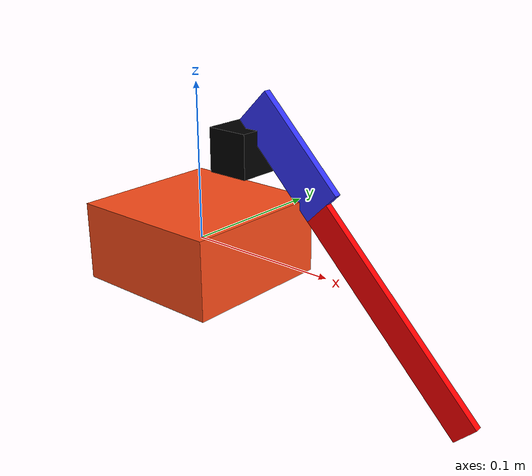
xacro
<?xml version="1.0"?>
<robot xmlns:xacro="http://www.ros.org/wiki/xacro" >

    <xacro:include filename="inertial_macros.xacro"/>

    <material name="white">
        <color rgba="1 1 1 1" />
    </material>

    <material name="orange">
        <color rgba="1 0.3 0.1 1"/>
    </material>

    <material name="blue">
        <color rgba="0.2 0.2 1 1"/>
    </material>

    <material name="black">
        <color rgba="0 0 0 1"/>
    </material>

    <material name="red">
        <color rgba="1 0 0 1"/>
    </material>

    <!-- BASE LINK -->
    <link name="base_link">
    </link>

    <!-- BODY LINK -->

    <joint name="body_joint" type="fixed">
        <parent link="base_link"/>
        <child link="body_link"/>
        <origin xyz="0 0 0"/>
    </joint>

    <link name="body_link">
        <visual>
            <origin xyz="0 0 0"/>
            <geometry>
                <box size="0.1 0.1 0.05"/>
            </geometry>
            <material name="orange"/>
        </visual>
        <collision>
            <origin xyz="0 0 0"/>
            <geometry>
                <box size="0.1 0.1 0.05"/>
            </geometry>
        </collision>
        <xacro:inertial_box mass="0.5" x="0.1" y="0.1" z="0.05">
            <origin xyz="0 0 0" rpy="0 0 0"/>
        </xacro:inertial_box>
    </link>

    <gazebo reference="body_link">
        <material>Gazebo/Orange</material>
    </gazebo>

    <!-- LEG1 J1 -->

    <joint name="leg1/j1_joint" type="revolute">
        <parent link="body_link"/>
        <child link="leg1/j1_link"/>
        <origin xyz="0 0.04 0.05" rpy="0 0 ${-pi/2}"/>
        <axis xyz="0 0 1"/>
        <limit lower="0" upper="${pi}" velocity="100" effort="100"/>
    </joint>

    <link name="leg1/j1_link">
        <visual>
            <origin xyz="0 0 0"/>
            <geometry>
                <box size="0.03 0.03 0.03"/>
            </geometry>
            <material name="black"/>
        </visual>
        <collision>
            <origin xyz="0 0 0"/>
            <geometry>
                <box size="0.03 0.03 0.03"/>
            </geometry>
        </collision>
    </link>

    <!-- LEG2 J2 -->
    <joint name="leg1/j2_joint" type="revolute">
        <parent link="leg1/j1_link"/>
        <child link="leg1/j2_link"/>
        <origin xyz="0 0 0.02" rpy="${-pi/4} 0 0"/>
        <axis xyz="1 0 0"/>
        <limit lower="0" upper="${pi}" velocity="100" effort="100"/>
    </joint>

    <link name="leg1/j2_link">
        <visual>
            <origin xyz="0 0.04 0.015"/>
            <geometry>
                <box size="0.005 0.08 0.03"/>
            </geometry>
            <material name="blue"/>
        </visual>
        <collision>
            <origin xyz="0 0.04 0.015"/>
            <geometry>
                <box size="0.005 0.08 0.03"/>
            </geometry>
        </collision>
        <xacro:inertial_box mass="0.01" x="0.005" y="0.08" z="0.03">
            <origin xyz="0 0.04 0.015" rpy="0 0 0"/>
        </xacro:inertial_box>
    </link>

    <!-- LEG2 J3 -->
    <joint name="leg1/j3_joint" type="revolute">
        <parent link="leg1/j2_link"/>
        <child link="leg1/j3_link"/>
        <origin xyz="0 0.08 0" rpy="0 0 0"/>
        <axis xyz="-1 0 0"/>
        <limit lower="0" upper="${pi}" velocity="100" effort="100"/>
    </joint>

    <link name="leg1/j3_link">
        <visual>
            <origin xyz="0 0.08 0.01"/>
            <geometry>
                <box size="0.005 0.16 0.02"/>
            </geometry>
            <material name="red"/>
        </visual>
        <collision>
            <origin xyz="0 0.08 0.01"/>
            <geometry>
                <box size="0.005 0.16 0.02"/>
            </geometry>
        </collision>
        <xacro:inertial_box mass="0.01" x="0.005" y="0.016" z="0.02">
            <origin xyz="0 0.08 0.01" rpy="0 0 0"/>
        </xacro:inertial_box>
    </link>

</robot>
